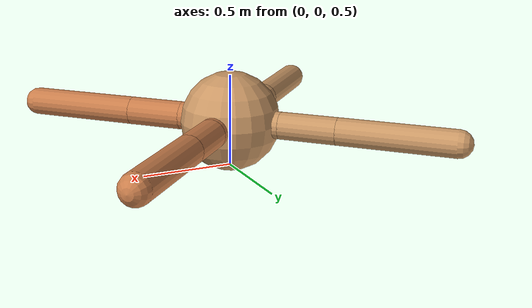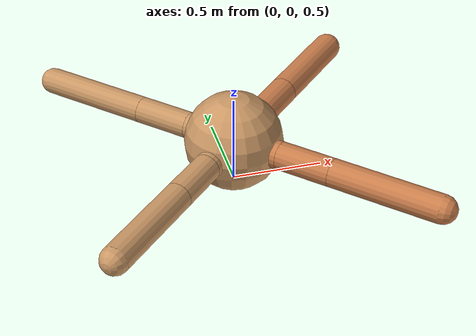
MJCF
<?xml version="1.0" ?>
<mujoco model="ant">

	<compiler angle="degree" coordinate="local" inertiafromgeom="true"/>

	<option integrator="RK4" timestep="0.01"/>

	<custom>

		<numeric data="0.0 0.0 0.55 1.0 0.0 0.0 0.0 0.0 1.0 0.0 -1.0 0.0 -1.0 0.0 1.0" name="init_qpos"/>

	</custom>

	<default>

		<joint armature="1" damping="1" limited="true"/>

		<geom conaffinity="0" condim="3" density="5.0" friction="1.5 0.1 0.1" margin="0.01" rgba="0.8 0.6 0.4 1"/>

	</default>

	<worldbody>

		<body name="torso" pos="0 0 0.75">

			<geom name="torso_geom" pos="0 0 0" size="0.2701832621965368" type="sphere"/>

			<!--joint armature="0" damping="0" limited="false" margin="0.01" name="root" pos="0 0 0" type="free"/-->

			<body name="front_left_leg" pos="0 0 0">

				<geom fromto="0 0 0 0.2 0.2 0" name="aux_1_geom" size="0.08062314073635378" type="capsule" rgba=".8 .5 .3 1"/>

				<body name="aux_1" pos="0.2 0.2 0">

					<joint axis="0 0 1" name="hip_1" pos="0.0 0.0 0.0" range="-40 40" type="hinge"/>

					<geom fromto="0 0 0 0.20156881035737118 0.20156881035737118 0" name="left_leg_geom" size="0.08062314073635378" type="capsule" rgba=".8 .5 .3 1"/>

					<body pos="0.20156881035737118 0.20156881035737118 0" name="front_left_foot">

						<joint axis="-1 1 0" name="ankle_1" pos="0.0 0.0 0.0" range="30 100" type="hinge"/>

						<geom fromto="0 0 0 0.40313762071474235 0.40313762071474235 0" name="left_ankle_geom" size="0.08062314073635378" type="capsule" rgba=".8 .5 .3 1"/>

					</body>

				</body>

			</body>

			<body name="front_right_leg" pos="0 0 0">

				<geom fromto="0 0 0 -0.2 0.2 0" name="aux_2_geom" size="0.07394167054132623" type="capsule"/>

				<body name="aux_2" pos="-0.2 0.2 0">

					<joint axis="0 0 1" name="hip_2" pos="0.0 0.0 0.0" range="-40 40" type="hinge"/>

					<geom fromto="0 0 0 -0.21782282747773354 0.21782282747773354 0" name="right_leg_geom" size="0.07394167054132623" type="capsule"/>

					<body pos="-0.21782282747773354 0.21782282747773354 0" name="front_right_foot">

						<joint axis="1 1 0" name="ankle_2" pos="0.0 0.0 0.0" range="-100 -30" type="hinge"/>

						<geom fromto="0 0 0 -0.4356456549554671 0.4356456549554671 0" name="right_ankle_geom" size="0.07394167054132623" type="capsule"/>

					</body>

				</body>

			</body>

			<body name="left_back_leg" pos="0 0 0">

				<geom fromto="0 0 0 -0.2 -0.2 0" name="aux_3_geom" size="0.07703577756765186" type="capsule"/>

				<body name="aux_3" pos="-0.2 -0.2 0">

					<joint axis="0 0 1" name="hip_3" pos="0.0 0.0 0.0" range="-40 40" type="hinge"/>

					<geom fromto="0 0 0 -0.19737937867785563 -0.19737937867785563 0" name="back_leg_geom" size="0.07703577756765186" type="capsule"/>

					<body pos="-0.19737937867785563 -0.19737937867785563 0" name="left_back_foot">

						<joint axis="-1 1 0" name="ankle_3" pos="0.0 0.0 0.0" range="-100 -30" type="hinge"/>

						<geom fromto="0 0 0 -0.39475875735571125 -0.39475875735571125 0" name="third_ankle_geom" size="0.07703577756765186" type="capsule"/>

					</body>

				</body>

			</body>

			<body name="right_back_leg" pos="0 0 0">

				<geom fromto="0 0 0 0.2 -0.2 0" name="aux_4_geom" size="0.07767050517016154" type="capsule" rgba=".8 .5 .3 1"/>

				<body name="aux_4" pos="0.2 -0.2 0">

					<joint axis="0 0 1" name="hip_4" pos="0.0 0.0 0.0" range="-40 40" type="hinge"/>

					<geom fromto="0 0 0 0.21495889449433117 -0.21495889449433117 0" name="rightback_leg_geom" size="0.07767050517016154" type="capsule" rgba=".8 .5 .3 1"/>

					<body pos="0.21495889449433117 -0.21495889449433117 0" name="right_back_foot">

						<joint axis="1 1 0" name="ankle_4" pos="0.0 0.0 0.0" range="30 100" type="hinge"/>

						<geom fromto="0 0 0 0.42991778898866234 -0.42991778898866234 0" name="fourth_ankle_geom" size="0.07767050517016154" type="capsule" rgba=".8 .5 .3 1"/>

					</body>

				</body>

			</body>

		</body>

	</worldbody>

	<actuator>

		<motor ctrllimited="true" ctrlrange="-1.0 1.0" joint="hip_4" gear="150"/>

		<motor ctrllimited="true" ctrlrange="-1.0 1.0" joint="ankle_4" gear="150"/>

		<motor ctrllimited="true" ctrlrange="-1.0 1.0" joint="hip_1" gear="150"/>

		<motor ctrllimited="true" ctrlrange="-1.0 1.0" joint="ankle_1" gear="150"/>

		<motor ctrllimited="true" ctrlrange="-1.0 1.0" joint="hip_2" gear="150"/>

		<motor ctrllimited="true" ctrlrange="-1.0 1.0" joint="ankle_2" gear="150"/>

		<motor ctrllimited="true" ctrlrange="-1.0 1.0" joint="hip_3" gear="150"/>

		<motor ctrllimited="true" ctrlrange="-1.0 1.0" joint="ankle_3" gear="150"/>

	</actuator>

</mujoco>
